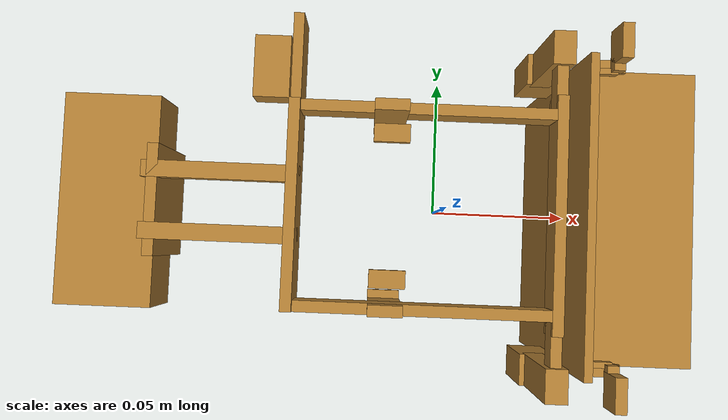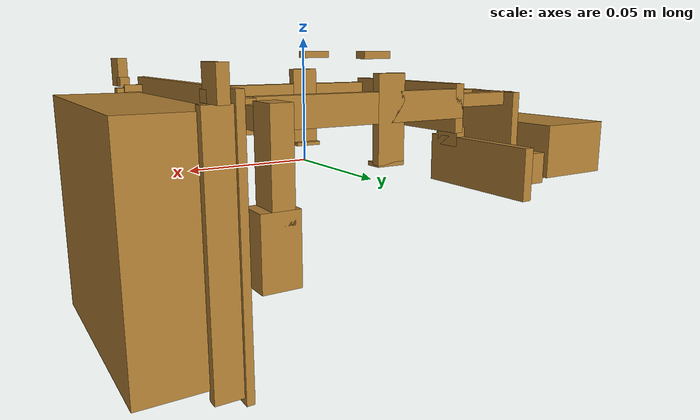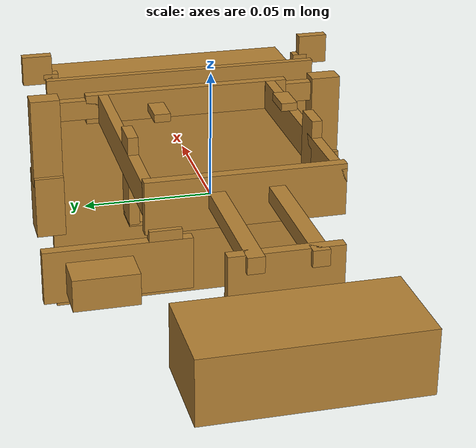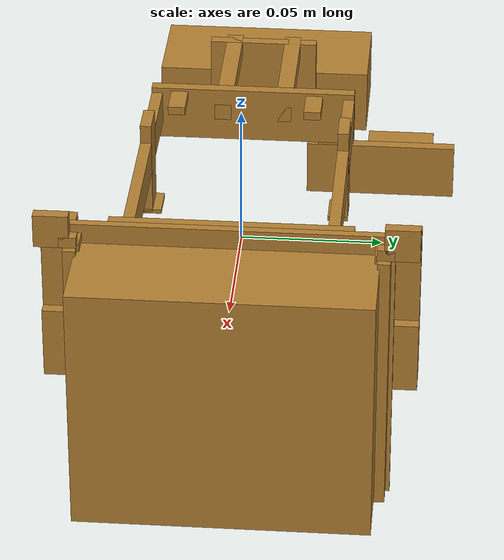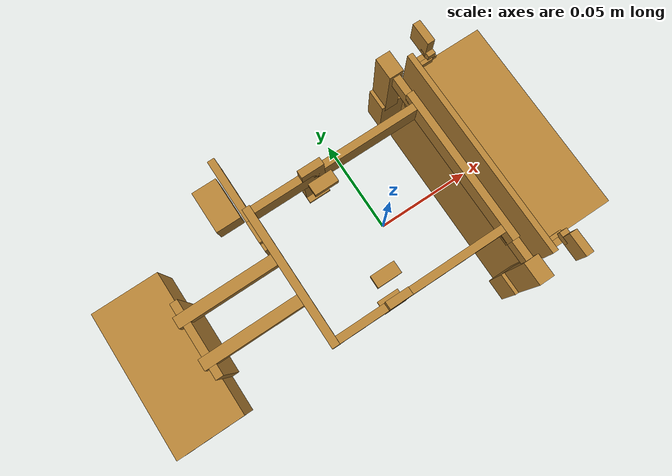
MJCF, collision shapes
<?xml version='1.0' encoding='utf-8'?>
<mujoco model="easy_mount_payload">
  <asset>
    <mesh name="easy_saddle" file="meshes/saddle.stl" scale="0.001 0.001 0.001" />
    <mesh name="easy_front_gate" file="meshes/front_gate.stl" scale="0.001 0.001 0.001" />
    <mesh name="easy_jetson_tray" file="meshes/jetson_tray.stl" scale="0.001 0.001 0.001" />
    <mesh name="easy_jetson_gate_left" file="meshes/jetson_gate_left.stl" scale="0.001 0.001 0.001" />
    <mesh name="easy_jetson_gate_right" file="meshes/jetson_gate_right.stl" scale="0.001 0.001 0.001" />
    <mesh name="easy_wiring_data" file="meshes/wiring_data.stl" scale="0.001 0.001 0.001" />
    <mesh name="easy_wiring_power" file="meshes/wiring_power.stl" scale="0.001 0.001 0.001" />
    <mesh name="easy_wiring_converter" file="meshes/wiring_converter.stl" scale="0.001 0.001 0.001" />
    <mesh name="easy_battery_pack" file="meshes/battery_pack.stl" scale="0.001 0.001 0.001" />
  </asset>
  <worldbody>
    <body name="easy_mount_payload">
      <inertial mass="0.44209408121185306" pos="0.00623390343685 0.00390590407636 -0.00216005086215" fullinertia="0.00105016944336 0.00332784476579 0.00354798414129 0.000208883407615 0.000152334073687 5.48240362169e-05" />
      <geom name="easy_saddle_visual" type="mesh" mesh="easy_saddle" group="2" mass="0" contype="0" conaffinity="0" rgba="0.91 0.65 0.2 1" />
      <geom name="easy_front_gate_visual" type="mesh" mesh="easy_front_gate" group="2" mass="0" contype="0" conaffinity="0" rgba="0.91 0.65 0.2 1" />
      <geom name="easy_jetson_tray_visual" type="mesh" mesh="easy_jetson_tray" group="2" mass="0" contype="0" conaffinity="0" rgba="0.15 0.4 0.48 1" />
      <geom name="easy_jetson_gate_left_visual" type="mesh" mesh="easy_jetson_gate_left" group="2" mass="0" contype="0" conaffinity="0" rgba="0.91 0.65 0.2 1" />
      <geom name="easy_jetson_gate_right_visual" type="mesh" mesh="easy_jetson_gate_right" group="2" mass="0" contype="0" conaffinity="0" rgba="0.91 0.65 0.2 1" />
      <geom name="easy_wiring_data_visual" type="mesh" mesh="easy_wiring_data" group="2" mass="0" contype="0" conaffinity="0" rgba="0.19 0.55 0.86 1" />
      <geom name="easy_wiring_power_visual" type="mesh" mesh="easy_wiring_power" group="2" mass="0" contype="0" conaffinity="0" rgba="0.26 0.68 0.46 1" />
      <geom name="easy_wiring_converter_visual" type="mesh" mesh="easy_wiring_converter" group="2" mass="0" contype="0" conaffinity="0" rgba="0.44 0.39 0.69 1" />
      <geom name="easy_battery_pack_visual" type="mesh" mesh="easy_battery_pack" group="2" mass="0" contype="0" conaffinity="0" rgba="0.22 0.25 0.28 1" />
      <geom name="easy_rear_beam" type="box" size="0.002 0.0371 0.01" pos="-0.052 0 0.022" group="3" mass="0" rgba="0.7 0.5 0.2 1" />
      <geom name="easy_front_gate" type="box" size="0.002 0.0421 0.006" pos="0.042 0 0.024" group="3" mass="0" rgba="0.7 0.5 0.2 1" />
      <geom name="easy_side_arm_-1" type="box" size="0.047 0.002 0.006" pos="-0.007 -0.0351 0.024" group="3" mass="0" rgba="0.7 0.5 0.2 1" />
      <geom name="easy_lower_capture_lip_-1" type="box" size="0.006 0.00355 0.0008" pos="-0.018 -0.03355 0.002" group="3" mass="0" rgba="0.7 0.5 0.2 1" />
      <geom name="easy_outer_clip_wall_-1" type="box" size="0.006 0.002 0.0175" pos="-0.018 -0.0351 0.0193" group="3" mass="0" rgba="0.7 0.5 0.2 1" />
      <geom name="easy_upper_seat_-1" type="box" size="0.006 0.003 0.0015" pos="-0.018 -0.024 0.0435" group="3" mass="0" rgba="0.7 0.5 0.2 1" />
      <geom name="easy_front_dock_-1" type="box" size="0.007 0.006 0.013" pos="0.043 -0.059 -0.016" group="3" mass="0" rgba="0.7 0.5 0.2 1" />
      <geom name="easy_front_dock_arm_-1" type="box" size="0.002 0.013 0.004" pos="0.042 -0.046 0.024" group="3" mass="0" rgba="0.7 0.5 0.2 1" />
      <geom name="easy_front_dock_riser_-1" type="box" size="0.004 0.006 0.019" pos="0.042 -0.059 0.011" group="3" mass="0" rgba="0.7 0.5 0.2 1" />
      <geom name="easy_side_arm_1" type="box" size="0.047 0.002 0.006" pos="-0.007 0.0351 0.024" group="3" mass="0" rgba="0.7 0.5 0.2 1" />
      <geom name="easy_lower_capture_lip_1" type="box" size="0.006 0.00355 0.0008" pos="-0.018 0.03355 0.002" group="3" mass="0" rgba="0.7 0.5 0.2 1" />
      <geom name="easy_outer_clip_wall_1" type="box" size="0.006 0.002 0.0175" pos="-0.018 0.0351 0.0193" group="3" mass="0" rgba="0.7 0.5 0.2 1" />
      <geom name="easy_upper_seat_1" type="box" size="0.006 0.003 0.0015" pos="-0.018 0.024 0.0435" group="3" mass="0" rgba="0.7 0.5 0.2 1" />
      <geom name="easy_front_dock_1" type="box" size="0.007 0.006 0.013" pos="0.043 0.059 -0.016" group="3" mass="0" rgba="0.7 0.5 0.2 1" />
      <geom name="easy_front_dock_arm_1" type="box" size="0.002 0.013 0.004" pos="0.042 0.046 0.024" group="3" mass="0" rgba="0.7 0.5 0.2 1" />
      <geom name="easy_front_dock_riser_1" type="box" size="0.004 0.006 0.019" pos="0.042 0.059 0.011" group="3" mass="0" rgba="0.7 0.5 0.2 1" />
      <geom name="easy_jetson" type="box" size="0.017385 0.0515 0.0454384375" pos="0.071385 -4.74842387632e-18 -0.018" group="3" mass="0" rgba="0.7 0.5 0.2 1" />
      <geom name="easy_tray_plate" type="box" size="0.0015 0.0565 0.052" pos="0.0515 -3.33066907388e-19 -0.018" group="3" mass="0" rgba="0.7 0.5 0.2 1" />
      <geom name="easy_corner_gate_tab_-1" type="box" size="0.00375 0.00105 0.0015" pos="0.05675 -0.05085 0.0293" group="3" mass="0" rgba="0.7 0.5 0.2 1" />
      <geom name="easy_corner_gate_link_-1" type="box" size="0.002 0.003 0.002" pos="0.06 -0.0535 0.032" group="3" mass="0" rgba="0.7 0.5 0.2 1" />
      <geom name="easy_corner_gate_screw_boss_-1" type="box" size="0.002 0.006 0.006" pos="0.06 -0.059 0.036" group="3" mass="0" rgba="0.7 0.5 0.2 1" />
      <geom name="easy_corner_gate_tab_1" type="box" size="0.00375 0.00105 0.0015" pos="0.05675 0.05085 0.0293" group="3" mass="0" rgba="0.7 0.5 0.2 1" />
      <geom name="easy_corner_gate_link_1" type="box" size="0.002 0.003 0.002" pos="0.06 0.0535 0.032" group="3" mass="0" rgba="0.7 0.5 0.2 1" />
      <geom name="easy_corner_gate_screw_boss_1" type="box" size="0.002 0.006 0.006" pos="0.06 0.059 0.036" group="3" mass="0" rgba="0.7 0.5 0.2 1" />
      <geom name="easy_battery" type="box" size="0.016 0.0365 0.009" pos="-0.1226 -4.13002965161e-18 4.13002965161e-18" group="3" mass="0" rgba="0.7 0.5 0.2 1" />
      <geom name="easy_rear_battery_pocket" type="box" size="0.018 0.0395 0.012" pos="-0.122 0 0" group="3" mass="0" rgba="0.7 0.5 0.2 1" />
      <geom name="easy_rear_battery_back_panel" type="box" size="0.002 0.02 0.019" pos="-0.102 0 0.007" group="3" mass="0" rgba="0.7 0.5 0.2 1" />
      <geom name="easy_rear_battery_web_-1" type="box" size="0.028 0.003 0.003" pos="-0.078 -0.011 0.023" group="3" mass="0" rgba="0.7 0.5 0.2 1" />
      <geom name="easy_rear_battery_web_1" type="box" size="0.028 0.003 0.003" pos="-0.078 0.011 0.023" group="3" mass="0" rgba="0.7 0.5 0.2 1" />
      <geom name="easy_converter_pad_riser" type="box" size="0.002 0.006 0.004" pos="-0.054 0.03 0.01" group="3" mass="0" rgba="0.7 0.5 0.2 1" />
      <geom name="easy_converter_pad" type="box" size="0.002 0.027 0.01" pos="-0.054 0.047 0" group="3" mass="0" rgba="0.7 0.5 0.2 1" />
      <geom name="easy_converter_envelope" type="box" size="0.007 0.012 0.006" pos="-0.064 0.054 0" group="3" mass="0" rgba="0.7 0.5 0.2 1" />
      <geom name="easy_tray_rail_-1" type="box" size="0.00525 0.0022 0.0485" pos="0.05825 -0.0529 -0.019" group="3" mass="0" rgba="0.7 0.5 0.2 1" />
      <geom name="easy_tray_rail_1" type="box" size="0.00525 0.0022 0.0485" pos="0.05825 0.0529 -0.019" group="3" mass="0" rgba="0.7 0.5 0.2 1" />
    </body>
  </worldbody>
</mujoco>
